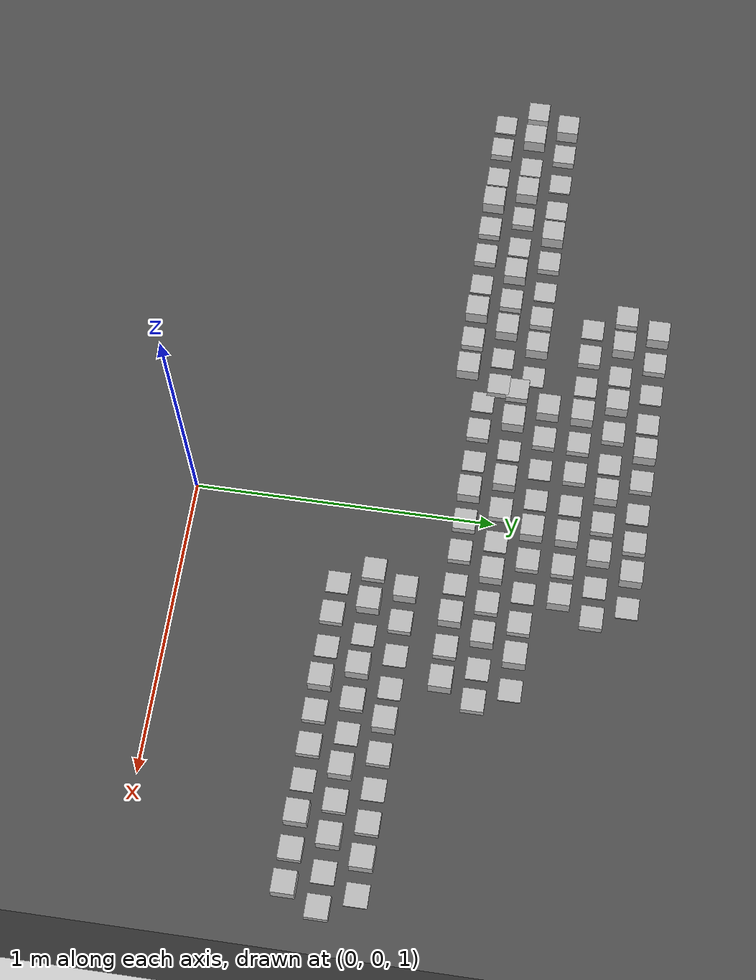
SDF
<sdf version="1.6">
 <world name="default">
  <model name="ground_plane">
   <static>1</static>
   <link name="link">
    <collision name="collision">
     <geometry><plane><normal>0 0 1</normal><size>100 100</size></plane></geometry>
     <surface><friction><ode><mu>100</mu><mu2>50</mu2></ode></friction></surface>
    </collision>
    <visual name="visual">
     <cast_shadows>0</cast_shadows>
     <geometry><plane><normal>0 0 1</normal><size>100 100</size></plane></geometry>
     <material>
      <script><uri>file://media/materials/scripts/gazebo.material</uri><name>Gazebo/Grey</name></script>
     </material>
    </visual>
   </link>
  </model>
  <model name="asphalt_plane">
   <static>1</static>
   <link name="link">
    <collision name="collision">
     <geometry><box><size>20 20 1.4296</size></box></geometry>
     <surface><friction><ode><mu>100</mu><mu2>50</mu2></ode></friction></surface>
    </collision>
    <visual name="visual">
     <cast_shadows>0</cast_shadows>
     <geometry><box><size>20 20 1.4296</size></box></geometry>
     <material>
      <script>
       <uri>model://asphalt_plane/materials/scripts</uri>
       <uri>model://asphalt_plane/materials/textures</uri>
       <name>vrc/asphalt</name>
      </script>
     </material>
    </visual>
   </link>
   <pose>-8.53833 2.29833 0.165376 0 -0 0</pose>
  </model>
  <model name="frc2016_roughterrain_1_clone">
   <static>0</static>
   <link name="link">
    <visual name="platform">
     <pose>0 0 0.08269 0 -0 0</pose>
     <geometry><box><size>1.27 0.5969 0.003175</size></box></geometry>
    </visual>
    <collision name="platform">
     <pose>0 0 0.08269 0 -0 0</pose>
     <geometry><box><size>1.27 0.5969 0.003175</size></box></geometry>
    </collision>
    <visual name="row1_block1_sm">
     <pose>0.51435 0.1143 0.09698 0 -0 0</pose>
     <geometry><box><size>0.0762 0.0762 0.0254</size></box></geometry>
    </visual>
    <collision name="row1_block1_sm">
     <pose>0.51435 0.1143 0.09698 0 -0 0</pose>
     <geometry><box><size>0.0762 0.0762 0.0254</size></box></geometry>
    </collision>
    <visual name="row1_block2_lg">
     <pose>0.40005 0.1143 0.12238 0 -0 0</pose>
     <geometry><box><size>0.0762 0.0762 0.0762</size></box></geometry>
    </visual>
    <collision name="row1_block2_lg">
     <pose>0.40005 0.1143 0.12238 0 -0 0</pose>
     <geometry><box><size>0.0762 0.0762 0.0762</size></box></geometry>
    </collision>
    <visual name="row1_block3_md">
     <pose>0.28575 0.1143 0.10968 0 -0 0</pose>
     <geometry><box><size>0.0762 0.0762 0.0508</size></box></geometry>
    </visual>
    <collision name="row1_block3_md">
     <pose>0.28575 0.1143 0.10968 0 -0 0</pose>
     <geometry><box><size>0.0762 0.0762 0.0508</size></box></geometry>
    </collision>
    <visual name="row1_block4_sm">
     <pose>0.17145 0.1143 0.09698 0 -0 0</pose>
     <geometry><box><size>0.0762 0.0762 0.0254</size></box></geometry>
    </visual>
    <collision name="row1_block4_sm">
     <pose>0.17145 0.1143 0.09698 0 -0 0</pose>
     <geometry><box><size>0.0762 0.0762 0.0254</size></box></geometry>
    </collision>
    <visual name="row1_block5_md">
     <pose>0.05715 0.1143 0.10968 0 -0 0</pose>
     <geometry><box><size>0.0762 0.0762 0.0508</size></box></geometry>
    </visual>
    <collision name="row1_block5_md">
     <pose>0.05715 0.1143 0.10968 0 -0 0</pose>
     <geometry><box><size>0.0762 0.0762 0.0508</size></box></geometry>
    </collision>
    <visual name="row1_block6_lg">
     <pose>-0.05715 0.1143 0.12238 0 -0 0</pose>
     <geometry><box><size>0.0762 0.0762 0.0762</size></box></geometry>
    </visual>
    <collision name="row1_block6_lg">
     <pose>-0.05715 0.1143 0.12238 0 -0 0</pose>
     <geometry><box><size>0.0762 0.0762 0.0762</size></box></geometry>
    </collision>
    <visual name="row1_block7_sm">
     <pose>-0.17145 0.1143 0.09698 0 -0 0</pose>
     <geometry><box><size>0.0762 0.0762 0.0254</size></box></geometry>
    </visual>
    <collision name="row1_block7_sm">
     <pose>-0.17145 0.1143 0.09698 0 -0 0</pose>
     <geometry><box><size>0.0762 0.0762 0.0254</size></box></geometry>
    </collision>
    <visual name="row1_block8_sm">
     <pose>-0.28575 0.1143 0.09698 0 -0 0</pose>
     <geometry><box><size>0.0762 0.0762 0.0254</size></box></geometry>
    </visual>
    <collision name="row1_block8_sm">
     <pose>-0.28575 0.1143 0.09698 0 -0 0</pose>
     <geometry><box><size>0.0762 0.0762 0.0254</size></box></geometry>
    </collision>
    <visual name="row1_block9_md">
     <pose>-0.40005 0.1143 0.10968 0 -0 0</pose>
     <geometry><box><size>0.0762 0.0762 0.0508</size></box></geometry>
    </visual>
    <collision name="row1_block9_md">
     <pose>-0.40005 0.1143 0.10968 0 -0 0</pose>
     <geometry><box><size>0.0762 0.0762 0.0508</size></box></geometry>
    </collision>
    <visual name="row1_block10_lg">
     <pose>-0.51435 0.1143 0.12238 0 -0 0</pose>
     <geometry><box><size>0.0762 0.0762 0.0762</size></box></geometry>
    </visual>
    <collision name="row1_block10_lg">
     <pose>-0.51435 0.1143 0.12238 0 -0 0</pose>
     <geometry><box><size>0.0762 0.0762 0.0762</size></box></geometry>
    </collision>
    <visual name="row2_block1_md">
     <pose>0.5715 0 0.10968 0 -0 0</pose>
     <geometry><box><size>0.0762 0.0762 0.0508</size></box></geometry>
    </visual>
    <collision name="row2_block1_md">
     <pose>0.5715 0 0.10968 0 -0 0</pose>
     <geometry><box><size>0.0762 0.0762 0.0508</size></box></geometry>
    </collision>
    <visual name="row2_block2_sm">
     <pose>0.4572 0 0.09698 0 -0 0</pose>
     <geometry><box><size>0.0762 0.0762 0.0254</size></box></geometry>
    </visual>
    <collision name="row2_block2_sm">
     <pose>0.4572 0 0.09698 0 -0 0</pose>
     <geometry><box><size>0.0762 0.0762 0.0254</size></box></geometry>
    </collision>
    <visual name="row2_block3_lg">
     <pose>0.3429 0 0.12238 0 -0 0</pose>
     <geometry><box><size>0.0762 0.0762 0.0762</size></box></geometry>
    </visual>
    <collision name="row2_block3_lg">
     <pose>0.3429 0 0.12238 0 -0 0</pose>
     <geometry><box><size>0.0762 0.0762 0.0762</size></box></geometry>
    </collision>
    <visual name="row2_block4_md">
     <pose>0.2286 0 0.10968 0 -0 0</pose>
     <geometry><box><size>0.0762 0.0762 0.0508</size></box></geometry>
    </visual>
    <collision name="row2_block4_md">
     <pose>0.2286 0 0.10968 0 -0 0</pose>
     <geometry><box><size>0.0762 0.0762 0.0508</size></box></geometry>
    </collision>
    <visual name="row2_block5_lg">
     <pose>0.1143 0 0.12238 0 -0 0</pose>
     <geometry><box><size>0.0762 0.0762 0.0762</size></box></geometry>
    </visual>
    <collision name="row2_block5_lg">
     <pose>0.1143 0 0.12238 0 -0 0</pose>
     <geometry><box><size>0.0762 0.0762 0.0762</size></box></geometry>
    </collision>
    <visual name="row2_block6_sm">
     <pose>0 0 0.09698 0 -0 0</pose>
     <geometry><box><size>0.0762 0.0762 0.0254</size></box></geometry>
    </visual>
    <collision name="row2_block6_sm">
     <pose>0 0 0.09698 0 -0 0</pose>
     <geometry><box><size>0.0762 0.0762 0.0254</size></box></geometry>
    </collision>
    <visual name="row2_block7_md">
     <pose>-0.1143 0 0.10968 0 -0 0</pose>
     <geometry><box><size>0.0762 0.0762 0.0508</size></box></geometry>
    </visual>
    <collision name="row2_block7_md">
     <pose>-0.1143 0 0.10968 0 -0 0</pose>
     <geometry><box><size>0.0762 0.0762 0.0508</size></box></geometry>
    </collision>
    <visual name="row2_block8_lg">
     <pose>-0.2286 0 0.12238 0 -0 0</pose>
     <geometry><box><size>0.0762 0.0762 0.0762</size></box></geometry>
    </visual>
    <collision name="row2_block8_lg">
     <pose>-0.2286 0 0.12238 0 -0 0</pose>
     <geometry><box><size>0.0762 0.0762 0.0762</size></box></geometry>
    </collision>
    <visual name="row2_block9_sm">
     <pose>-0.3429 0 0.09698 0 -0 0</pose>
     <geometry><box><size>0.0762 0.0762 0.0254</size></box></geometry>
    </visual>
    <collision name="row2_block9_sm">
     <pose>-0.3429 0 0.09698 0 -0 0</pose>
     <geometry><box><size>0.0762 0.0762 0.0254</size></box></geometry>
    </collision>
    <visual name="row2_block10_lg">
     <pose>-0.4572 0 0.12238 0 -0 0</pose>
     <geometry><box><size>0.0762 0.0762 0.0762</size></box></geometry>
    </visual>
    <collision name="row2_block10_lg">
     <pose>-0.4572 0 0.12238 0 -0 0</pose>
     <geometry><box><size>0.0762 0.0762 0.0762</size></box></geometry>
    </collision>
    <visual name="row2_block11_md">
     <pose>-0.5715 0 0.10968 0 -0 0</pose>
     <geometry><box><size>0.0762 0.0762 0.0508</size></box></geometry>
    </visual>
    <collision name="row2_block11_md">
     <pose>-0.5715 0 0.10968 0 -0 0</pose>
     <geometry><box><size>0.0762 0.0762 0.0508</size></box></geometry>
    </collision>
    <visual name="row3_block1_lg">
     <pose>0.51435 -0.1143 0.12238 0 -0 0</pose>
     <geometry><box><size>0.0762 0.0762 0.0762</size></box></geometry>
    </visual>
    <collision name="row3_block1_lg">
     <pose>0.51435 -0.1143 0.12238 0 -0 0</pose>
     <geometry><box><size>0.0762 0.0762 0.0762</size></box></geometry>
    </collision>
    <visual name="row3_block2_md">
     <pose>0.40005 -0.1143 0.10968 0 -0 0</pose>
     <geometry><box><size>0.0762 0.0762 0.0508</size></box></geometry>
    </visual>
    <collision name="row3_block2_md">
     <pose>0.40005 -0.1143 0.10968 0 -0 0</pose>
     <geometry><box><size>0.0762 0.0762 0.0508</size></box></geometry>
    </collision>
    <visual name="row3_block3_lg">
     <pose>0.28575 -0.1143 0.12238 0 -0 0</pose>
     <geometry><box><size>0.0762 0.0762 0.0762</size></box></geometry>
    </visual>
    <collision name="row3_block3_lg">
     <pose>0.28575 -0.1143 0.12238 0 -0 0</pose>
     <geometry><box><size>0.0762 0.0762 0.0762</size></box></geometry>
    </collision>
    <visual name="row3_block4_sm">
     <pose>0.17145 -0.1143 0.09698 0 -0 0</pose>
     <geometry><box><size>0.0762 0.0762 0.0254</size></box></geometry>
    </visual>
    <collision name="row3_block4_sm">
     <pose>0.17145 -0.1143 0.09698 0 -0 0</pose>
     <geometry><box><size>0.0762 0.0762 0.0254</size></box></geometry>
    </collision>
    <visual name="row3_block5_md">
     <pose>0.05715 -0.1143 0.10968 0 -0 0</pose>
     <geometry><box><size>0.0762 0.0762 0.0508</size></box></geometry>
    </visual>
    <collision name="row3_block5_md">
     <pose>0.05715 -0.1143 0.10968 0 -0 0</pose>
     <geometry><box><size>0.0762 0.0762 0.0508</size></box></geometry>
    </collision>
    <visual name="row3_block6_md">
     <pose>-0.05715 -0.1143 0.10968 0 -0 0</pose>
     <geometry><box><size>0.0762 0.0762 0.0508</size></box></geometry>
    </visual>
    <collision name="row3_block6_md">
     <pose>-0.05715 -0.1143 0.10968 0 -0 0</pose>
     <geometry><box><size>0.0762 0.0762 0.0508</size></box></geometry>
    </collision>
    <visual name="row3_block7_lg">
     <pose>-0.17145 -0.1143 0.12238 0 -0 0</pose>
     <geometry><box><size>0.0762 0.0762 0.0762</size></box></geometry>
    </visual>
    <collision name="row3_block7_lg">
     <pose>-0.17145 -0.1143 0.12238 0 -0 0</pose>
     <geometry><box><size>0.0762 0.0762 0.0762</size></box></geometry>
    </collision>
    <visual name="row3_block8_sm">
     <pose>-0.28575 -0.1143 0.09698 0 -0 0</pose>
     <geometry><box><size>0.0762 0.0762 0.0254</size></box></geometry>
    </visual>
    <collision name="row3_block8_sm">
     <pose>-0.28575 -0.1143 0.09698 0 -0 0</pose>
     <geometry><box><size>0.0762 0.0762 0.0254</size></box></geometry>
    </collision>
    <visual name="row3_block9_md">
     <pose>-0.40005 -0.1143 0.10968 0 -0 0</pose>
     <geometry><box><size>0.0762 0.0762 0.0508</size></box></geometry>
    </visual>
    <collision name="row3_block9_md">
     <pose>-0.40005 -0.1143 0.10968 0 -0 0</pose>
     <geometry><box><size>0.0762 0.0762 0.0508</size></box></geometry>
    </collision>
    <visual name="row3_block10_sm">
     <pose>-0.51435 -0.1143 0.09698 0 -0 0</pose>
     <geometry><box><size>0.0762 0.0762 0.0254</size></box></geometry>
    </visual>
    <collision name="row3_block10_sm">
     <pose>-0.51435 -0.1143 0.09698 0 -0 0</pose>
     <geometry><box><size>0.0762 0.0762 0.0254</size></box></geometry>
    </collision>
   </link>
   <pose>0.746404 0.624342 0.77609 0 -0 0</pose>
  </model>
  <model name="frc2016_roughterrain_1_clone_1">
   <static>0</static>
   <link name="link">
    <visual name="platform">
     <pose>0 0 0.08269 0 -0 0</pose>
     <geometry><box><size>1.27 0.5969 0.003175</size></box></geometry>
    </visual>
    <collision name="platform">
     <pose>0 0 0.08269 0 -0 0</pose>
     <geometry><box><size>1.27 0.5969 0.003175</size></box></geometry>
    </collision>
    <visual name="row1_block1_sm">
     <pose>0.51435 0.1143 0.09698 0 -0 0</pose>
     <geometry><box><size>0.0762 0.0762 0.0254</size></box></geometry>
    </visual>
    <collision name="row1_block1_sm">
     <pose>0.51435 0.1143 0.09698 0 -0 0</pose>
     <geometry><box><size>0.0762 0.0762 0.0254</size></box></geometry>
    </collision>
    <visual name="row1_block2_lg">
     <pose>0.40005 0.1143 0.12238 0 -0 0</pose>
     <geometry><box><size>0.0762 0.0762 0.0762</size></box></geometry>
    </visual>
    <collision name="row1_block2_lg">
     <pose>0.40005 0.1143 0.12238 0 -0 0</pose>
     <geometry><box><size>0.0762 0.0762 0.0762</size></box></geometry>
    </collision>
    <visual name="row1_block3_md">
     <pose>0.28575 0.1143 0.10968 0 -0 0</pose>
     <geometry><box><size>0.0762 0.0762 0.0508</size></box></geometry>
    </visual>
    <collision name="row1_block3_md">
     <pose>0.28575 0.1143 0.10968 0 -0 0</pose>
     <geometry><box><size>0.0762 0.0762 0.0508</size></box></geometry>
    </collision>
    <visual name="row1_block4_sm">
     <pose>0.17145 0.1143 0.09698 0 -0 0</pose>
     <geometry><box><size>0.0762 0.0762 0.0254</size></box></geometry>
    </visual>
    <collision name="row1_block4_sm">
     <pose>0.17145 0.1143 0.09698 0 -0 0</pose>
     <geometry><box><size>0.0762 0.0762 0.0254</size></box></geometry>
    </collision>
    <visual name="row1_block5_md">
     <pose>0.05715 0.1143 0.10968 0 -0 0</pose>
     <geometry><box><size>0.0762 0.0762 0.0508</size></box></geometry>
    </visual>
    <collision name="row1_block5_md">
     <pose>0.05715 0.1143 0.10968 0 -0 0</pose>
     <geometry><box><size>0.0762 0.0762 0.0508</size></box></geometry>
    </collision>
    <visual name="row1_block6_lg">
     <pose>-0.05715 0.1143 0.12238 0 -0 0</pose>
     <geometry><box><size>0.0762 0.0762 0.0762</size></box></geometry>
    </visual>
    <collision name="row1_block6_lg">
     <pose>-0.05715 0.1143 0.12238 0 -0 0</pose>
     <geometry><box><size>0.0762 0.0762 0.0762</size></box></geometry>
    </collision>
    <visual name="row1_block7_sm">
     <pose>-0.17145 0.1143 0.09698 0 -0 0</pose>
     <geometry><box><size>0.0762 0.0762 0.0254</size></box></geometry>
    </visual>
    <collision name="row1_block7_sm">
     <pose>-0.17145 0.1143 0.09698 0 -0 0</pose>
     <geometry><box><size>0.0762 0.0762 0.0254</size></box></geometry>
    </collision>
    <visual name="row1_block8_sm">
     <pose>-0.28575 0.1143 0.09698 0 -0 0</pose>
     <geometry><box><size>0.0762 0.0762 0.0254</size></box></geometry>
    </visual>
    <collision name="row1_block8_sm">
     <pose>-0.28575 0.1143 0.09698 0 -0 0</pose>
     <geometry><box><size>0.0762 0.0762 0.0254</size></box></geometry>
    </collision>
    <visual name="row1_block9_md">
     <pose>-0.40005 0.1143 0.10968 0 -0 0</pose>
     <geometry><box><size>0.0762 0.0762 0.0508</size></box></geometry>
    </visual>
    <collision name="row1_block9_md">
     <pose>-0.40005 0.1143 0.10968 0 -0 0</pose>
     <geometry><box><size>0.0762 0.0762 0.0508</size></box></geometry>
    </collision>
    <visual name="row1_block10_lg">
     <pose>-0.51435 0.1143 0.12238 0 -0 0</pose>
     <geometry><box><size>0.0762 0.0762 0.0762</size></box></geometry>
    </visual>
    <collision name="row1_block10_lg">
     <pose>-0.51435 0.1143 0.12238 0 -0 0</pose>
     <geometry><box><size>0.0762 0.0762 0.0762</size></box></geometry>
    </collision>
    <visual name="row2_block1_md">
     <pose>0.5715 0 0.10968 0 -0 0</pose>
     <geometry><box><size>0.0762 0.0762 0.0508</size></box></geometry>
    </visual>
    <collision name="row2_block1_md">
     <pose>0.5715 0 0.10968 0 -0 0</pose>
     <geometry><box><size>0.0762 0.0762 0.0508</size></box></geometry>
    </collision>
    <visual name="row2_block2_sm">
     <pose>0.4572 0 0.09698 0 -0 0</pose>
     <geometry><box><size>0.0762 0.0762 0.0254</size></box></geometry>
    </visual>
    <collision name="row2_block2_sm">
     <pose>0.4572 0 0.09698 0 -0 0</pose>
     <geometry><box><size>0.0762 0.0762 0.0254</size></box></geometry>
    </collision>
    <visual name="row2_block3_lg">
     <pose>0.3429 0 0.12238 0 -0 0</pose>
     <geometry><box><size>0.0762 0.0762 0.0762</size></box></geometry>
    </visual>
    <collision name="row2_block3_lg">
     <pose>0.3429 0 0.12238 0 -0 0</pose>
     <geometry><box><size>0.0762 0.0762 0.0762</size></box></geometry>
    </collision>
    <visual name="row2_block4_md">
     <pose>0.2286 0 0.10968 0 -0 0</pose>
     <geometry><box><size>0.0762 0.0762 0.0508</size></box></geometry>
    </visual>
    <collision name="row2_block4_md">
     <pose>0.2286 0 0.10968 0 -0 0</pose>
     <geometry><box><size>0.0762 0.0762 0.0508</size></box></geometry>
    </collision>
    <visual name="row2_block5_lg">
     <pose>0.1143 0 0.12238 0 -0 0</pose>
     <geometry><box><size>0.0762 0.0762 0.0762</size></box></geometry>
    </visual>
    <collision name="row2_block5_lg">
     <pose>0.1143 0 0.12238 0 -0 0</pose>
     <geometry><box><size>0.0762 0.0762 0.0762</size></box></geometry>
    </collision>
    <visual name="row2_block6_sm">
     <pose>0 0 0.09698 0 -0 0</pose>
     <geometry><box><size>0.0762 0.0762 0.0254</size></box></geometry>
    </visual>
    <collision name="row2_block6_sm">
     <pose>0 0 0.09698 0 -0 0</pose>
     <geometry><box><size>0.0762 0.0762 0.0254</size></box></geometry>
    </collision>
    <visual name="row2_block7_md">
     <pose>-0.1143 0 0.10968 0 -0 0</pose>
     <geometry><box><size>0.0762 0.0762 0.0508</size></box></geometry>
    </visual>
    <collision name="row2_block7_md">
     <pose>-0.1143 0 0.10968 0 -0 0</pose>
     <geometry><box><size>0.0762 0.0762 0.0508</size></box></geometry>
    </collision>
    <visual name="row2_block8_lg">
     <pose>-0.2286 0 0.12238 0 -0 0</pose>
     <geometry><box><size>0.0762 0.0762 0.0762</size></box></geometry>
    </visual>
    <collision name="row2_block8_lg">
     <pose>-0.2286 0 0.12238 0 -0 0</pose>
     <geometry><box><size>0.0762 0.0762 0.0762</size></box></geometry>
    </collision>
    <visual name="row2_block9_sm">
     <pose>-0.3429 0 0.09698 0 -0 0</pose>
     <geometry><box><size>0.0762 0.0762 0.0254</size></box></geometry>
    </visual>
    <collision name="row2_block9_sm">
     <pose>-0.3429 0 0.09698 0 -0 0</pose>
     <geometry><box><size>0.0762 0.0762 0.0254</size></box></geometry>
    </collision>
    <visual name="row2_block10_lg">
     <pose>-0.4572 0 0.12238 0 -0 0</pose>
     <geometry><box><size>0.0762 0.0762 0.0762</size></box></geometry>
    </visual>
    <collision name="row2_block10_lg">
     <pose>-0.4572 0 0.12238 0 -0 0</pose>
     <geometry><box><size>0.0762 0.0762 0.0762</size></box></geometry>
    </collision>
    <visual name="row2_block11_md">
     <pose>-0.5715 0 0.10968 0 -0 0</pose>
     <geometry><box><size>0.0762 0.0762 0.0508</size></box></geometry>
    </visual>
    <collision name="row2_block11_md">
     <pose>-0.5715 0 0.10968 0 -0 0</pose>
     <geometry><box><size>0.0762 0.0762 0.0508</size></box></geometry>
    </collision>
    <visual name="row3_block1_lg">
     <pose>0.51435 -0.1143 0.12238 0 -0 0</pose>
     <geometry><box><size>0.0762 0.0762 0.0762</size></box></geometry>
    </visual>
    <collision name="row3_block1_lg">
     <pose>0.51435 -0.1143 0.12238 0 -0 0</pose>
     <geometry><box><size>0.0762 0.0762 0.0762</size></box></geometry>
    </collision>
    <visual name="row3_block2_md">
     <pose>0.40005 -0.1143 0.10968 0 -0 0</pose>
     <geometry><box><size>0.0762 0.0762 0.0508</size></box></geometry>
    </visual>
    <collision name="row3_block2_md">
     <pose>0.40005 -0.1143 0.10968 0 -0 0</pose>
     <geometry><box><size>0.0762 0.0762 0.0508</size></box></geometry>
    </collision>
    <visual name="row3_block3_lg">
     <pose>0.28575 -0.1143 0.12238 0 -0 0</pose>
     <geometry><box><size>0.0762 0.0762 0.0762</size></box></geometry>
    </visual>
    <collision name="row3_block3_lg">
     <pose>0.28575 -0.1143 0.12238 0 -0 0</pose>
     <geometry><box><size>0.0762 0.0762 0.0762</size></box></geometry>
    </collision>
    <visual name="row3_block4_sm">
     <pose>0.17145 -0.1143 0.09698 0 -0 0</pose>
     <geometry><box><size>0.0762 0.0762 0.0254</size></box></geometry>
    </visual>
    <collision name="row3_block4_sm">
     <pose>0.17145 -0.1143 0.09698 0 -0 0</pose>
     <geometry><box><size>0.0762 0.0762 0.0254</size></box></geometry>
    </collision>
    <visual name="row3_block5_md">
     <pose>0.05715 -0.1143 0.10968 0 -0 0</pose>
     <geometry><box><size>0.0762 0.0762 0.0508</size></box></geometry>
    </visual>
    <collision name="row3_block5_md">
     <pose>0.05715 -0.1143 0.10968 0 -0 0</pose>
     <geometry><box><size>0.0762 0.0762 0.0508</size></box></geometry>
    </collision>
    <visual name="row3_block6_md">
     <pose>-0.05715 -0.1143 0.10968 0 -0 0</pose>
     <geometry><box><size>0.0762 0.0762 0.0508</size></box></geometry>
    </visual>
    <collision name="row3_block6_md">
     <pose>-0.05715 -0.1143 0.10968 0 -0 0</pose>
     <geometry><box><size>0.0762 0.0762 0.0508</size></box></geometry>
    </collision>
    <visual name="row3_block7_lg">
     <pose>-0.17145 -0.1143 0.12238 0 -0 0</pose>
     <geometry><box><size>0.0762 0.0762 0.0762</size></box></geometry>
    </visual>
    <collision name="row3_block7_lg">
     <pose>-0.17145 -0.1143 0.12238 0 -0 0</pose>
     <geometry><box><size>0.0762 0.0762 0.0762</size></box></geometry>
    </collision>
    <visual name="row3_block8_sm">
     <pose>-0.28575 -0.1143 0.09698 0 -0 0</pose>
     <geometry><box><size>0.0762 0.0762 0.0254</size></box></geometry>
    </visual>
    <collision name="row3_block8_sm">
     <pose>-0.28575 -0.1143 0.09698 0 -0 0</pose>
     <geometry><box><size>0.0762 0.0762 0.0254</size></box></geometry>
    </collision>
    <visual name="row3_block9_md">
     <pose>-0.40005 -0.1143 0.10968 0 -0 0</pose>
     <geometry><box><size>0.0762 0.0762 0.0508</size></box></geometry>
    </visual>
    <collision name="row3_block9_md">
     <pose>-0.40005 -0.1143 0.10968 0 -0 0</pose>
     <geometry><box><size>0.0762 0.0762 0.0508</size></box></geometry>
    </collision>
    <visual name="row3_block10_sm">
     <pose>-0.51435 -0.1143 0.09698 0 -0 0</pose>
     <geometry><box><size>0.0762 0.0762 0.0254</size></box></geometry>
    </visual>
    <collision name="row3_block10_sm">
     <pose>-0.51435 -0.1143 0.09698 0 -0 0</pose>
     <geometry><box><size>0.0762 0.0762 0.0254</size></box></geometry>
    </collision>
   </link>
   <pose>0.012186 1.01257 0.777128 0 -0 0</pose>
  </model>
  <model name="frc2016_roughterrain_1_clone_11_clone">
   <static>0</static>
   <link name="link">
    <visual name="platform">
     <pose>0 0 0.08269 0 -0 0</pose>
     <geometry><box><size>1.27 0.5969 0.003175</size></box></geometry>
    </visual>
    <collision name="platform">
     <pose>0 0 0.08269 0 -0 0</pose>
     <geometry><box><size>1.27 0.5969 0.003175</size></box></geometry>
    </collision>
    <visual name="row1_block1_sm">
     <pose>0.51435 0.1143 0.09698 0 -0 0</pose>
     <geometry><box><size>0.0762 0.0762 0.0254</size></box></geometry>
    </visual>
    <collision name="row1_block1_sm">
     <pose>0.51435 0.1143 0.09698 0 -0 0</pose>
     <geometry><box><size>0.0762 0.0762 0.0254</size></box></geometry>
    </collision>
    <visual name="row1_block2_lg">
     <pose>0.40005 0.1143 0.12238 0 -0 0</pose>
     <geometry><box><size>0.0762 0.0762 0.0762</size></box></geometry>
    </visual>
    <collision name="row1_block2_lg">
     <pose>0.40005 0.1143 0.12238 0 -0 0</pose>
     <geometry><box><size>0.0762 0.0762 0.0762</size></box></geometry>
    </collision>
    <visual name="row1_block3_md">
     <pose>0.28575 0.1143 0.10968 0 -0 0</pose>
     <geometry><box><size>0.0762 0.0762 0.0508</size></box></geometry>
    </visual>
    <collision name="row1_block3_md">
     <pose>0.28575 0.1143 0.10968 0 -0 0</pose>
     <geometry><box><size>0.0762 0.0762 0.0508</size></box></geometry>
    </collision>
    <visual name="row1_block4_sm">
     <pose>0.17145 0.1143 0.09698 0 -0 0</pose>
     <geometry><box><size>0.0762 0.0762 0.0254</size></box></geometry>
    </visual>
    <collision name="row1_block4_sm">
     <pose>0.17145 0.1143 0.09698 0 -0 0</pose>
     <geometry><box><size>0.0762 0.0762 0.0254</size></box></geometry>
    </collision>
    <visual name="row1_block5_md">
     <pose>0.05715 0.1143 0.10968 0 -0 0</pose>
     <geometry><box><size>0.0762 0.0762 0.0508</size></box></geometry>
    </visual>
    <collision name="row1_block5_md">
     <pose>0.05715 0.1143 0.10968 0 -0 0</pose>
     <geometry><box><size>0.0762 0.0762 0.0508</size></box></geometry>
    </collision>
    <visual name="row1_block6_lg">
     <pose>-0.05715 0.1143 0.12238 0 -0 0</pose>
     <geometry><box><size>0.0762 0.0762 0.0762</size></box></geometry>
    </visual>
    <collision name="row1_block6_lg">
     <pose>-0.05715 0.1143 0.12238 0 -0 0</pose>
     <geometry><box><size>0.0762 0.0762 0.0762</size></box></geometry>
    </collision>
    <visual name="row1_block7_sm">
     <pose>-0.17145 0.1143 0.09698 0 -0 0</pose>
     <geometry><box><size>0.0762 0.0762 0.0254</size></box></geometry>
    </visual>
    <collision name="row1_block7_sm">
     <pose>-0.17145 0.1143 0.09698 0 -0 0</pose>
     <geometry><box><size>0.0762 0.0762 0.0254</size></box></geometry>
    </collision>
    <visual name="row1_block8_sm">
     <pose>-0.28575 0.1143 0.09698 0 -0 0</pose>
     <geometry><box><size>0.0762 0.0762 0.0254</size></box></geometry>
    </visual>
    <collision name="row1_block8_sm">
     <pose>-0.28575 0.1143 0.09698 0 -0 0</pose>
     <geometry><box><size>0.0762 0.0762 0.0254</size></box></geometry>
    </collision>
    <visual name="row1_block9_md">
     <pose>-0.40005 0.1143 0.10968 0 -0 0</pose>
     <geometry><box><size>0.0762 0.0762 0.0508</size></box></geometry>
    </visual>
    <collision name="row1_block9_md">
     <pose>-0.40005 0.1143 0.10968 0 -0 0</pose>
     <geometry><box><size>0.0762 0.0762 0.0508</size></box></geometry>
    </collision>
    <visual name="row1_block10_lg">
     <pose>-0.51435 0.1143 0.12238 0 -0 0</pose>
     <geometry><box><size>0.0762 0.0762 0.0762</size></box></geometry>
    </visual>
    <collision name="row1_block10_lg">
     <pose>-0.51435 0.1143 0.12238 0 -0 0</pose>
     <geometry><box><size>0.0762 0.0762 0.0762</size></box></geometry>
    </collision>
    <visual name="row2_block1_md">
     <pose>0.5715 0 0.10968 0 -0 0</pose>
     <geometry><box><size>0.0762 0.0762 0.0508</size></box></geometry>
    </visual>
    <collision name="row2_block1_md">
     <pose>0.5715 0 0.10968 0 -0 0</pose>
     <geometry><box><size>0.0762 0.0762 0.0508</size></box></geometry>
    </collision>
    <visual name="row2_block2_sm">
     <pose>0.4572 0 0.09698 0 -0 0</pose>
     <geometry><box><size>0.0762 0.0762 0.0254</size></box></geometry>
    </visual>
    <collision name="row2_block2_sm">
     <pose>0.4572 0 0.09698 0 -0 0</pose>
     <geometry><box><size>0.0762 0.0762 0.0254</size></box></geometry>
    </collision>
    <visual name="row2_block3_lg">
     <pose>0.3429 0 0.12238 0 -0 0</pose>
     <geometry><box><size>0.0762 0.0762 0.0762</size></box></geometry>
    </visual>
    <collision name="row2_block3_lg">
     <pose>0.3429 0 0.12238 0 -0 0</pose>
     <geometry><box><size>0.0762 0.0762 0.0762</size></box></geometry>
    </collision>
    <visual name="row2_block4_md">
     <pose>0.2286 0 0.10968 0 -0 0</pose>
     <geometry><box><size>0.0762 0.0762 0.0508</size></box></geometry>
    </visual>
    <collision name="row2_block4_md">
     <pose>0.2286 0 0.10968 0 -0 0</pose>
     <geometry><box><size>0.0762 0.0762 0.0508</size></box></geometry>
    </collision>
    <visual name="row2_block5_lg">
     <pose>0.1143 0 0.12238 0 -0 0</pose>
     <geometry><box><size>0.0762 0.0762 0.0762</size></box></geometry>
    </visual>
    <collision name="row2_block5_lg">
     <pose>0.1143 0 0.12238 0 -0 0</pose>
     <geometry><box><size>0.0762 0.0762 0.0762</size></box></geometry>
    </collision>
    <visual name="row2_block6_sm">
     <pose>0 0 0.09698 0 -0 0</pose>
     <geometry><box><size>0.0762 0.0762 0.0254</size></box></geometry>
    </visual>
    <collision name="row2_block6_sm">
     <pose>0 0 0.09698 0 -0 0</pose>
     <geometry><box><size>0.0762 0.0762 0.0254</size></box></geometry>
    </collision>
    <visual name="row2_block7_md">
     <pose>-0.1143 0 0.10968 0 -0 0</pose>
     <geometry><box><size>0.0762 0.0762 0.0508</size></box></geometry>
    </visual>
    <collision name="row2_block7_md">
     <pose>-0.1143 0 0.10968 0 -0 0</pose>
     <geometry><box><size>0.0762 0.0762 0.0508</size></box></geometry>
    </collision>
    <visual name="row2_block8_lg">
     <pose>-0.2286 0 0.12238 0 -0 0</pose>
     <geometry><box><size>0.0762 0.0762 0.0762</size></box></geometry>
    </visual>
    <collision name="row2_block8_lg">
     <pose>-0.2286 0 0.12238 0 -0 0</pose>
     <geometry><box><size>0.0762 0.0762 0.0762</size></box></geometry>
    </collision>
    <visual name="row2_block9_sm">
     <pose>-0.3429 0 0.09698 0 -0 0</pose>
     <geometry><box><size>0.0762 0.0762 0.0254</size></box></geometry>
    </visual>
    <collision name="row2_block9_sm">
     <pose>-0.3429 0 0.09698 0 -0 0</pose>
     <geometry><box><size>0.0762 0.0762 0.0254</size></box></geometry>
    </collision>
    <visual name="row2_block10_lg">
     <pose>-0.4572 0 0.12238 0 -0 0</pose>
     <geometry><box><size>0.0762 0.0762 0.0762</size></box></geometry>
    </visual>
    <collision name="row2_block10_lg">
     <pose>-0.4572 0 0.12238 0 -0 0</pose>
     <geometry><box><size>0.0762 0.0762 0.0762</size></box></geometry>
    </collision>
    <visual name="row2_block11_md">
     <pose>-0.5715 0 0.10968 0 -0 0</pose>
     <geometry><box><size>0.0762 0.0762 0.0508</size></box></geometry>
    </visual>
    <collision name="row2_block11_md">
     <pose>-0.5715 0 0.10968 0 -0 0</pose>
     <geometry><box><size>0.0762 0.0762 0.0508</size></box></geometry>
    </collision>
    <visual name="row3_block1_lg">
     <pose>0.51435 -0.1143 0.12238 0 -0 0</pose>
     <geometry><box><size>0.0762 0.0762 0.0762</size></box></geometry>
    </visual>
    <collision name="row3_block1_lg">
     <pose>0.51435 -0.1143 0.12238 0 -0 0</pose>
     <geometry><box><size>0.0762 0.0762 0.0762</size></box></geometry>
    </collision>
    <visual name="row3_block2_md">
     <pose>0.40005 -0.1143 0.10968 0 -0 0</pose>
     <geometry><box><size>0.0762 0.0762 0.0508</size></box></geometry>
    </visual>
    <collision name="row3_block2_md">
     <pose>0.40005 -0.1143 0.10968 0 -0 0</pose>
     <geometry><box><size>0.0762 0.0762 0.0508</size></box></geometry>
    </collision>
    <visual name="row3_block3_lg">
     <pose>0.28575 -0.1143 0.12238 0 -0 0</pose>
     <geometry><box><size>0.0762 0.0762 0.0762</size></box></geometry>
    </visual>
    <collision name="row3_block3_lg">
     <pose>0.28575 -0.1143 0.12238 0 -0 0</pose>
     <geometry><box><size>0.0762 0.0762 0.0762</size></box></geometry>
    </collision>
    <visual name="row3_block4_sm">
     <pose>0.17145 -0.1143 0.09698 0 -0 0</pose>
     <geometry><box><size>0.0762 0.0762 0.0254</size></box></geometry>
    </visual>
    <collision name="row3_block4_sm">
     <pose>0.17145 -0.1143 0.09698 0 -0 0</pose>
     <geometry><box><size>0.0762 0.0762 0.0254</size></box></geometry>
    </collision>
    <visual name="row3_block5_md">
     <pose>0.05715 -0.1143 0.10968 0 -0 0</pose>
     <geometry><box><size>0.0762 0.0762 0.0508</size></box></geometry>
    </visual>
    <collision name="row3_block5_md">
     <pose>0.05715 -0.1143 0.10968 0 -0 0</pose>
     <geometry><box><size>0.0762 0.0762 0.0508</size></box></geometry>
    </collision>
    <visual name="row3_block6_md">
     <pose>-0.05715 -0.1143 0.10968 0 -0 0</pose>
     <geometry><box><size>0.0762 0.0762 0.0508</size></box></geometry>
    </visual>
    <collision name="row3_block6_md">
     <pose>-0.05715 -0.1143 0.10968 0 -0 0</pose>
     <geometry><box><size>0.0762 0.0762 0.0508</size></box></geometry>
    </collision>
    <visual name="row3_block7_lg">
     <pose>-0.17145 -0.1143 0.12238 0 -0 0</pose>
     <geometry><box><size>0.0762 0.0762 0.0762</size></box></geometry>
    </visual>
    <collision name="row3_block7_lg">
     <pose>-0.17145 -0.1143 0.12238 0 -0 0</pose>
     <geometry><box><size>0.0762 0.0762 0.0762</size></box></geometry>
    </collision>
    <visual name="row3_block8_sm">
     <pose>-0.28575 -0.1143 0.09698 0 -0 0</pose>
     <geometry><box><size>0.0762 0.0762 0.0254</size></box></geometry>
    </visual>
    <collision name="row3_block8_sm">
     <pose>-0.28575 -0.1143 0.09698 0 -0 0</pose>
     <geometry><box><size>0.0762 0.0762 0.0254</size></box></geometry>
    </collision>
    <visual name="row3_block9_md">
     <pose>-0.40005 -0.1143 0.10968 0 -0 0</pose>
     <geometry><box><size>0.0762 0.0762 0.0508</size></box></geometry>
    </visual>
    <collision name="row3_block9_md">
     <pose>-0.40005 -0.1143 0.10968 0 -0 0</pose>
     <geometry><box><size>0.0762 0.0762 0.0508</size></box></geometry>
    </collision>
    <visual name="row3_block10_sm">
     <pose>-0.51435 -0.1143 0.09698 0 -0 0</pose>
     <geometry><box><size>0.0762 0.0762 0.0254</size></box></geometry>
    </visual>
    <collision name="row3_block10_sm">
     <pose>-0.51435 -0.1143 0.09698 0 -0 0</pose>
     <geometry><box><size>0.0762 0.0762 0.0254</size></box></geometry>
    </collision>
   </link>
   <pose>-0.326562 1.36035 0.777128 0 -0 0</pose>
  </model>
  <model name="frc2016_roughterrain_1_clone_11_clone_0">
   <static>0</static>
   <link name="link">
    <visual name="platform">
     <pose>0 0 0.08269 0 -0 0</pose>
     <geometry><box><size>1.27 0.5969 0.003175</size></box></geometry>
    </visual>
    <collision name="platform">
     <pose>0 0 0.08269 0 -0 0</pose>
     <geometry><box><size>1.27 0.5969 0.003175</size></box></geometry>
    </collision>
    <visual name="row1_block1_sm">
     <pose>0.51435 0.1143 0.09698 0 -0 0</pose>
     <geometry><box><size>0.0762 0.0762 0.0254</size></box></geometry>
    </visual>
    <collision name="row1_block1_sm">
     <pose>0.51435 0.1143 0.09698 0 -0 0</pose>
     <geometry><box><size>0.0762 0.0762 0.0254</size></box></geometry>
    </collision>
    <visual name="row1_block2_lg">
     <pose>0.40005 0.1143 0.12238 0 -0 0</pose>
     <geometry><box><size>0.0762 0.0762 0.0762</size></box></geometry>
    </visual>
    <collision name="row1_block2_lg">
     <pose>0.40005 0.1143 0.12238 0 -0 0</pose>
     <geometry><box><size>0.0762 0.0762 0.0762</size></box></geometry>
    </collision>
    <visual name="row1_block3_md">
     <pose>0.28575 0.1143 0.10968 0 -0 0</pose>
     <geometry><box><size>0.0762 0.0762 0.0508</size></box></geometry>
    </visual>
    <collision name="row1_block3_md">
     <pose>0.28575 0.1143 0.10968 0 -0 0</pose>
     <geometry><box><size>0.0762 0.0762 0.0508</size></box></geometry>
    </collision>
    <visual name="row1_block4_sm">
     <pose>0.17145 0.1143 0.09698 0 -0 0</pose>
     <geometry><box><size>0.0762 0.0762 0.0254</size></box></geometry>
    </visual>
    <collision name="row1_block4_sm">
     <pose>0.17145 0.1143 0.09698 0 -0 0</pose>
     <geometry><box><size>0.0762 0.0762 0.0254</size></box></geometry>
    </collision>
    <visual name="row1_block5_md">
     <pose>0.05715 0.1143 0.10968 0 -0 0</pose>
     <geometry><box><size>0.0762 0.0762 0.0508</size></box></geometry>
    </visual>
    <collision name="row1_block5_md">
     <pose>0.05715 0.1143 0.10968 0 -0 0</pose>
     <geometry><box><size>0.0762 0.0762 0.0508</size></box></geometry>
    </collision>
    <visual name="row1_block6_lg">
     <pose>-0.05715 0.1143 0.12238 0 -0 0</pose>
     <geometry><box><size>0.0762 0.0762 0.0762</size></box></geometry>
    </visual>
    <collision name="row1_block6_lg">
     <pose>-0.05715 0.1143 0.12238 0 -0 0</pose>
     <geometry><box><size>0.0762 0.0762 0.0762</size></box></geometry>
    </collision>
    <visual name="row1_block7_sm">
     <pose>-0.17145 0.1143 0.09698 0 -0 0</pose>
     <geometry><box><size>0.0762 0.0762 0.0254</size></box></geometry>
    </visual>
    <collision name="row1_block7_sm">
     <pose>-0.17145 0.1143 0.09698 0 -0 0</pose>
     <geometry><box><size>0.0762 0.0762 0.0254</size></box></geometry>
    </collision>
    <visual name="row1_block8_sm">
     <pose>-0.28575 0.1143 0.09698 0 -0 0</pose>
     <geometry><box><size>0.0762 0.0762 0.0254</size></box></geometry>
    </visual>
    <collision name="row1_block8_sm">
     <pose>-0.28575 0.1143 0.09698 0 -0 0</pose>
     <geometry><box><size>0.0762 0.0762 0.0254</size></box></geometry>
    </collision>
    <visual name="row1_block9_md">
     <pose>-0.40005 0.1143 0.10968 0 -0 0</pose>
     <geometry><box><size>0.0762 0.0762 0.0508</size></box></geometry>
    </visual>
    <collision name="row1_block9_md">
     <pose>-0.40005 0.1143 0.10968 0 -0 0</pose>
     <geometry><box><size>0.0762 0.0762 0.0508</size></box></geometry>
    </collision>
    <visual name="row1_block10_lg">
     <pose>-0.51435 0.1143 0.12238 0 -0 0</pose>
     <geometry><box><size>0.0762 0.0762 0.0762</size></box></geometry>
    </visual>
    <collision name="row1_block10_lg">
     <pose>-0.51435 0.1143 0.12238 0 -0 0</pose>
     <geometry><box><size>0.0762 0.0762 0.0762</size></box></geometry>
    </collision>
    <visual name="row2_block1_md">
     <pose>0.5715 0 0.10968 0 -0 0</pose>
     <geometry><box><size>0.0762 0.0762 0.0508</size></box></geometry>
    </visual>
    <collision name="row2_block1_md">
     <pose>0.5715 0 0.10968 0 -0 0</pose>
     <geometry><box><size>0.0762 0.0762 0.0508</size></box></geometry>
    </collision>
    <visual name="row2_block2_sm">
     <pose>0.4572 0 0.09698 0 -0 0</pose>
     <geometry><box><size>0.0762 0.0762 0.0254</size></box></geometry>
    </visual>
    <collision name="row2_block2_sm">
     <pose>0.4572 0 0.09698 0 -0 0</pose>
     <geometry><box><size>0.0762 0.0762 0.0254</size></box></geometry>
    </collision>
    <visual name="row2_block3_lg">
     <pose>0.3429 0 0.12238 0 -0 0</pose>
     <geometry><box><size>0.0762 0.0762 0.0762</size></box></geometry>
    </visual>
    <collision name="row2_block3_lg">
     <pose>0.3429 0 0.12238 0 -0 0</pose>
     <geometry><box><size>0.0762 0.0762 0.0762</size></box></geometry>
    </collision>
    <visual name="row2_block4_md">
     <pose>0.2286 0 0.10968 0 -0 0</pose>
     <geometry><box><size>0.0762 0.0762 0.0508</size></box></geometry>
    </visual>
    <collision name="row2_block4_md">
     <pose>0.2286 0 0.10968 0 -0 0</pose>
     <geometry><box><size>0.0762 0.0762 0.0508</size></box></geometry>
    </collision>
    <visual name="row2_block5_lg">
     <pose>0.1143 0 0.12238 0 -0 0</pose>
     <geometry><box><size>0.0762 0.0762 0.0762</size></box></geometry>
    </visual>
    <collision name="row2_block5_lg">
     <pose>0.1143 0 0.12238 0 -0 0</pose>
     <geometry><box><size>0.0762 0.0762 0.0762</size></box></geometry>
    </collision>
    <visual name="row2_block6_sm">
     <pose>0 0 0.09698 0 -0 0</pose>
     <geometry><box><size>0.0762 0.0762 0.0254</size></box></geometry>
    </visual>
    <collision name="row2_block6_sm">
     <pose>0 0 0.09698 0 -0 0</pose>
     <geometry><box><size>0.0762 0.0762 0.0254</size></box></geometry>
    </collision>
    <visual name="row2_block7_md">
     <pose>-0.1143 0 0.10968 0 -0 0</pose>
     <geometry><box><size>0.0762 0.0762 0.0508</size></box></geometry>
    </visual>
    <collision name="row2_block7_md">
     <pose>-0.1143 0 0.10968 0 -0 0</pose>
     <geometry><box><size>0.0762 0.0762 0.0508</size></box></geometry>
    </collision>
    <visual name="row2_block8_lg">
     <pose>-0.2286 0 0.12238 0 -0 0</pose>
     <geometry><box><size>0.0762 0.0762 0.0762</size></box></geometry>
    </visual>
    <collision name="row2_block8_lg">
     <pose>-0.2286 0 0.12238 0 -0 0</pose>
     <geometry><box><size>0.0762 0.0762 0.0762</size></box></geometry>
    </collision>
    <visual name="row2_block9_sm">
     <pose>-0.3429 0 0.09698 0 -0 0</pose>
     <geometry><box><size>0.0762 0.0762 0.0254</size></box></geometry>
    </visual>
    <collision name="row2_block9_sm">
     <pose>-0.3429 0 0.09698 0 -0 0</pose>
     <geometry><box><size>0.0762 0.0762 0.0254</size></box></geometry>
    </collision>
    <visual name="row2_block10_lg">
     <pose>-0.4572 0 0.12238 0 -0 0</pose>
     <geometry><box><size>0.0762 0.0762 0.0762</size></box></geometry>
    </visual>
    <collision name="row2_block10_lg">
     <pose>-0.4572 0 0.12238 0 -0 0</pose>
     <geometry><box><size>0.0762 0.0762 0.0762</size></box></geometry>
    </collision>
    <visual name="row2_block11_md">
     <pose>-0.5715 0 0.10968 0 -0 0</pose>
     <geometry><box><size>0.0762 0.0762 0.0508</size></box></geometry>
    </visual>
    <collision name="row2_block11_md">
     <pose>-0.5715 0 0.10968 0 -0 0</pose>
     <geometry><box><size>0.0762 0.0762 0.0508</size></box></geometry>
    </collision>
    <visual name="row3_block1_lg">
     <pose>0.51435 -0.1143 0.12238 0 -0 0</pose>
     <geometry><box><size>0.0762 0.0762 0.0762</size></box></geometry>
    </visual>
    <collision name="row3_block1_lg">
     <pose>0.51435 -0.1143 0.12238 0 -0 0</pose>
     <geometry><box><size>0.0762 0.0762 0.0762</size></box></geometry>
    </collision>
    <visual name="row3_block2_md">
     <pose>0.40005 -0.1143 0.10968 0 -0 0</pose>
     <geometry><box><size>0.0762 0.0762 0.0508</size></box></geometry>
    </visual>
    <collision name="row3_block2_md">
     <pose>0.40005 -0.1143 0.10968 0 -0 0</pose>
     <geometry><box><size>0.0762 0.0762 0.0508</size></box></geometry>
    </collision>
    <visual name="row3_block3_lg">
     <pose>0.28575 -0.1143 0.12238 0 -0 0</pose>
     <geometry><box><size>0.0762 0.0762 0.0762</size></box></geometry>
    </visual>
    <collision name="row3_block3_lg">
     <pose>0.28575 -0.1143 0.12238 0 -0 0</pose>
     <geometry><box><size>0.0762 0.0762 0.0762</size></box></geometry>
    </collision>
    <visual name="row3_block4_sm">
     <pose>0.17145 -0.1143 0.09698 0 -0 0</pose>
     <geometry><box><size>0.0762 0.0762 0.0254</size></box></geometry>
    </visual>
    <collision name="row3_block4_sm">
     <pose>0.17145 -0.1143 0.09698 0 -0 0</pose>
     <geometry><box><size>0.0762 0.0762 0.0254</size></box></geometry>
    </collision>
    <visual name="row3_block5_md">
     <pose>0.05715 -0.1143 0.10968 0 -0 0</pose>
     <geometry><box><size>0.0762 0.0762 0.0508</size></box></geometry>
    </visual>
    <collision name="row3_block5_md">
     <pose>0.05715 -0.1143 0.10968 0 -0 0</pose>
     <geometry><box><size>0.0762 0.0762 0.0508</size></box></geometry>
    </collision>
    <visual name="row3_block6_md">
     <pose>-0.05715 -0.1143 0.10968 0 -0 0</pose>
     <geometry><box><size>0.0762 0.0762 0.0508</size></box></geometry>
    </visual>
    <collision name="row3_block6_md">
     <pose>-0.05715 -0.1143 0.10968 0 -0 0</pose>
     <geometry><box><size>0.0762 0.0762 0.0508</size></box></geometry>
    </collision>
    <visual name="row3_block7_lg">
     <pose>-0.17145 -0.1143 0.12238 0 -0 0</pose>
     <geometry><box><size>0.0762 0.0762 0.0762</size></box></geometry>
    </visual>
    <collision name="row3_block7_lg">
     <pose>-0.17145 -0.1143 0.12238 0 -0 0</pose>
     <geometry><box><size>0.0762 0.0762 0.0762</size></box></geometry>
    </collision>
    <visual name="row3_block8_sm">
     <pose>-0.28575 -0.1143 0.09698 0 -0 0</pose>
     <geometry><box><size>0.0762 0.0762 0.0254</size></box></geometry>
    </visual>
    <collision name="row3_block8_sm">
     <pose>-0.28575 -0.1143 0.09698 0 -0 0</pose>
     <geometry><box><size>0.0762 0.0762 0.0254</size></box></geometry>
    </collision>
    <visual name="row3_block9_md">
     <pose>-0.40005 -0.1143 0.10968 0 -0 0</pose>
     <geometry><box><size>0.0762 0.0762 0.0508</size></box></geometry>
    </visual>
    <collision name="row3_block9_md">
     <pose>-0.40005 -0.1143 0.10968 0 -0 0</pose>
     <geometry><box><size>0.0762 0.0762 0.0508</size></box></geometry>
    </collision>
    <visual name="row3_block10_sm">
     <pose>-0.51435 -0.1143 0.09698 0 -0 0</pose>
     <geometry><box><size>0.0762 0.0762 0.0254</size></box></geometry>
    </visual>
    <collision name="row3_block10_sm">
     <pose>-0.51435 -0.1143 0.09698 0 -0 0</pose>
     <geometry><box><size>0.0762 0.0762 0.0254</size></box></geometry>
    </collision>
   </link>
   <pose>-1.13965 0.945739 0.777128 0 -0 0</pose>
  </model>
 </world>
</sdf>
